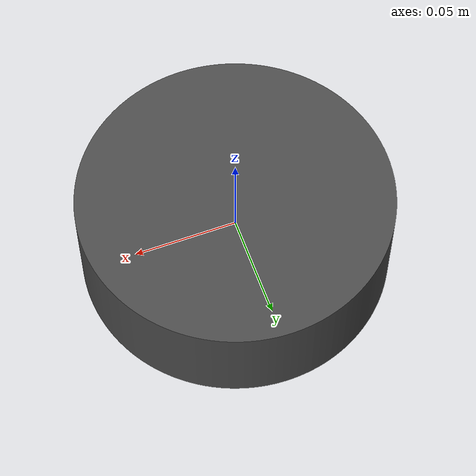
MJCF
<mujoco model="circle_1">
  <compiler angle="radian" />

  <asset>
    <mesh name="circle_1_visual_mesh" file="circle_1/textured.obj" />
    <mesh name="circle_1_collision_mesh" file="circle_1/textured.stl" />
    <material name="gray" rgba="0.3 0.3 0.3 1" />
  </asset>

  <worldbody>
    <body name="circle_1" pos="0 0 0" euler="0 0 0">
      <freejoint name="circle_1_joint" />
      <geom name="circle_1_visual_geom" type="mesh" mesh="circle_1_visual_mesh" material="gray" pos="-0.0 0.0 0.0" euler="0 0 0" contype="0" conaffinity="0" group="0" />
      <geom name="circle_1_collision_geom" type="mesh" mesh="circle_1_collision_mesh" pos="-0.0 0.0 0.0" euler="0 0 0" contype="1" conaffinity="1" group="3" />
      <inertial pos="0 0 0" euler="0 0 0" mass="0.411" diaginertia="0.001 0.001 0.001" />
    </body>
  </worldbody>
</mujoco>
